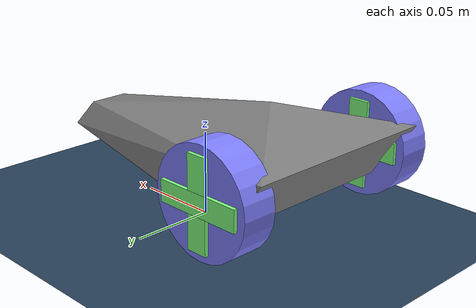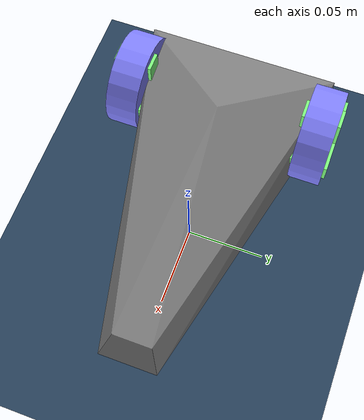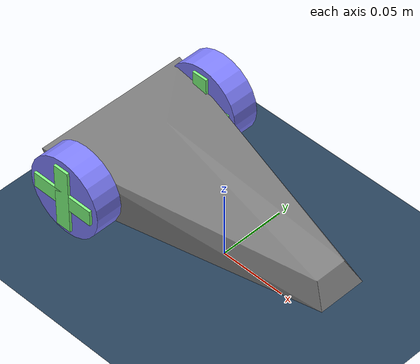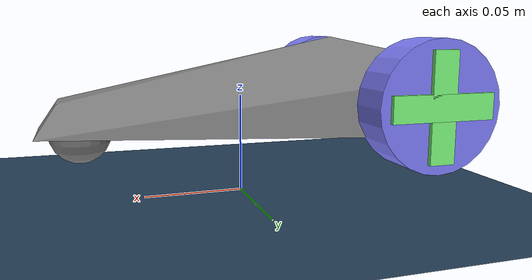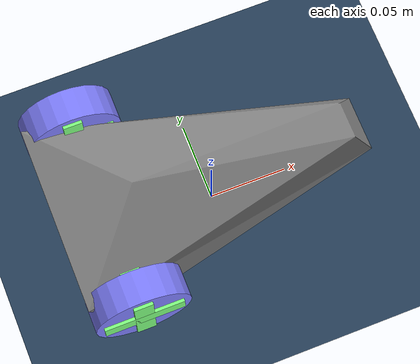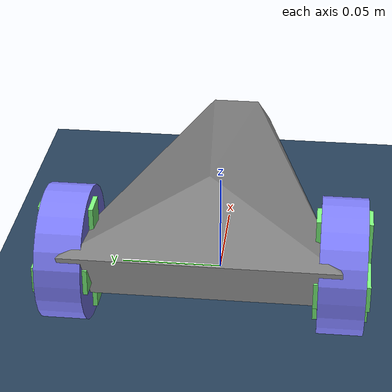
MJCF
<mujoco>
  <compiler autolimits="true"/>

  <option timestep="0.002" iterations="50" solver="Newton" tolerance="1e-10">
    <flag gravity="enable"/>
  </option>

  <asset>
    <texture name="grid" type="2d" builtin="checker" width="512" height="512" rgb1=".1 .2 .3" rgb2=".2 .3 .4"/>
    <material name="grid" texture="grid" texrepeat="1 1" texuniform="true" reflectance=".2"/>
    <mesh name="chasis" scale=".01 .006 .0015"
      vertex=" 9   2   0
              -10  10  10
               9  -2   0
               10  3  -10
               10 -3  -10
              -8   10 -10
              -10 -10  10
              -8  -10 -10
              -5   0   20"/>
  </asset>

  <default>
    <joint damping=".05" armature="0.005"/>
    <geom friction="1 0.5 0.5" condim="3"/>
    <default class="wheel">
      <geom type="cylinder" size=".03 .01" rgba=".5 .5 1 1" friction="1.5 0.5 0.5"/>
    </default>
    <default class="decor">
      <site type="box" rgba=".5 1 .5 1"/>
    </default>
  </default>

  <worldbody>
    <geom type="plane" size="3 3 .01" material="grid" friction="1 0.5 0.5" condim="3"/>
    <body name="car" pos="0 0 .05">
      <freejoint/>
      <inertial pos="0 0 0" mass="1" diaginertia="0.02 0.02 0.03"/>
      <light name="top light" pos="0 0 2" mode="trackcom" diffuse=".4 .4 .4"/>
      <geom name="chasis" type="mesh" mesh="chasis"/>
      <geom name="front wheel" pos=".08 0 -.015" type="sphere" size=".015" condim="1" priority="1"/>
      <light name="front light" pos=".1 0 .02" dir="2 0 -1" diffuse="1 1 1"/>
      <!-- Dashboard position marker -->
      <site name="dashboard_marker" pos="0 0 .1" type="box" size=".001 .001 .001" rgba="0 0 0 0"/>
      <body name="left wheel" pos="-.07 .06 0" zaxis="0 1 0">
        <joint name="left"/>
        <geom class="wheel"/>
        <site class="decor" size=".006 .025 .012"/>
        <site class="decor" size=".025 .006 .012"/>
      </body>
      <body name="right wheel" pos="-.07 -.06 0" zaxis="0 1 0">
        <joint name="right"/>
        <geom class="wheel"/>
        <site class="decor" size=".006 .025 .012"/>
        <site class="decor" size=".025 .006 .012"/>
      </body>
    </body>
  </worldbody>

  <tendon>
    <fixed name="forward">
      <joint joint="left" coef=".5"/>
      <joint joint="right" coef=".5"/>
    </fixed>
    <fixed name="turn">
      <joint joint="left" coef="-.5"/>
      <joint joint="right" coef=".5"/>
    </fixed>
  </tendon>

  <actuator>
    <motor name="forward" tendon="forward" ctrlrange="-1 1" gear="12"/>
    <motor name="turn" tendon="turn" ctrlrange="-1 1" gear="6"/>
  </actuator>
</mujoco>
